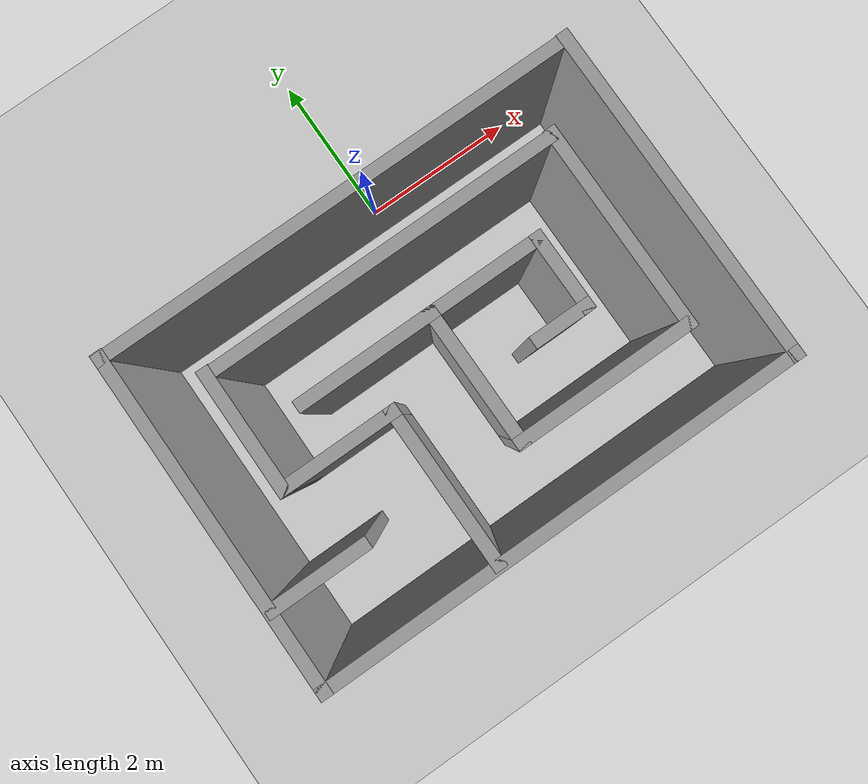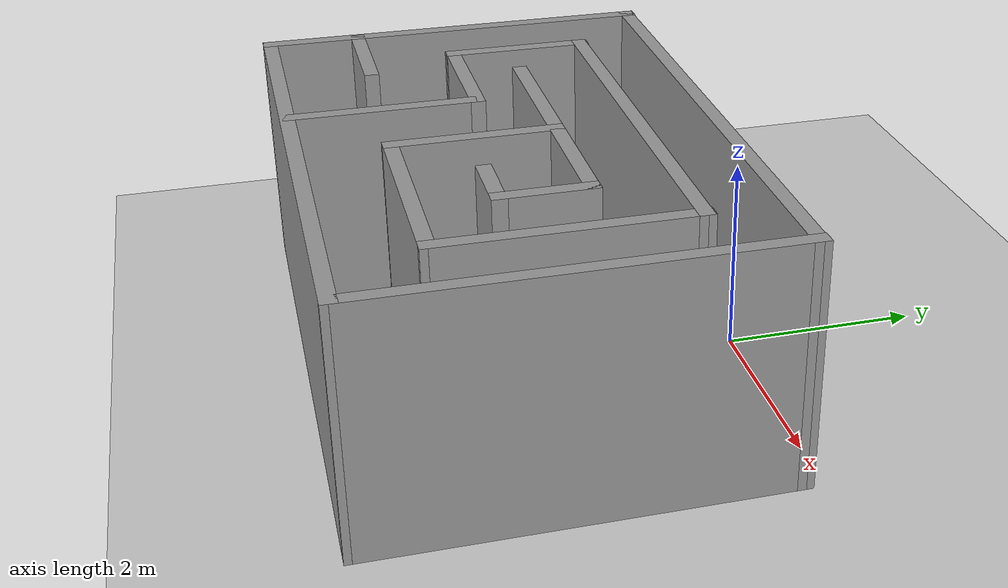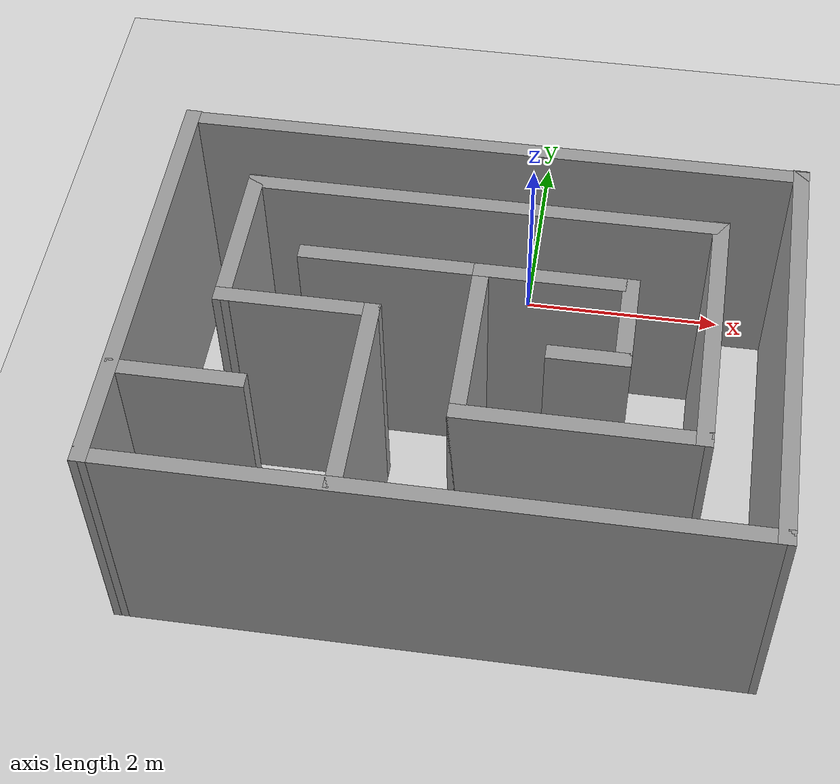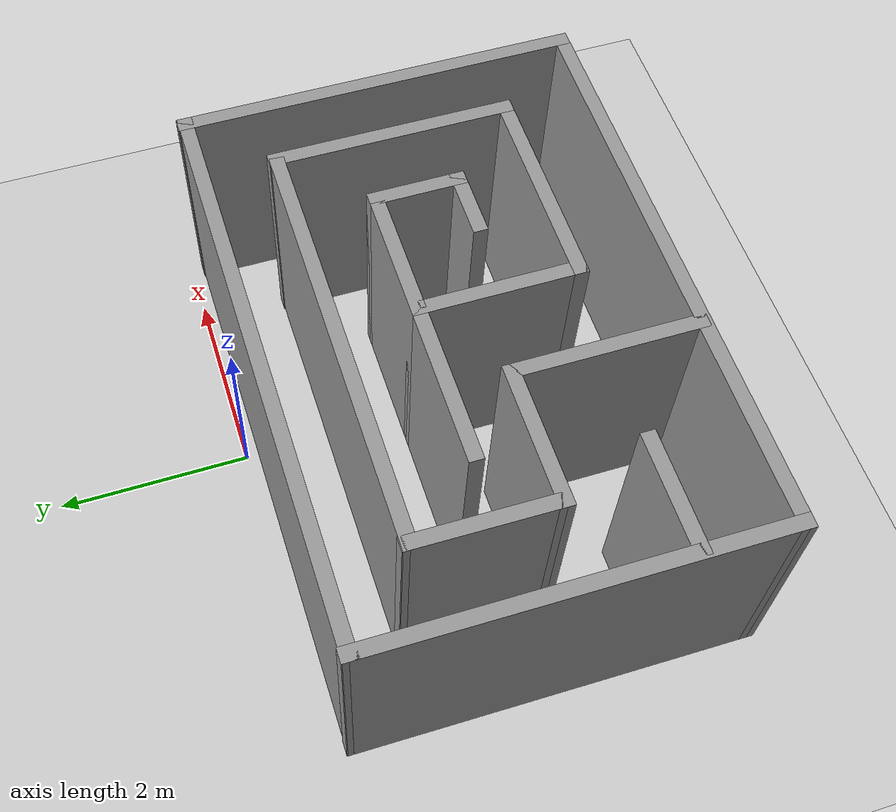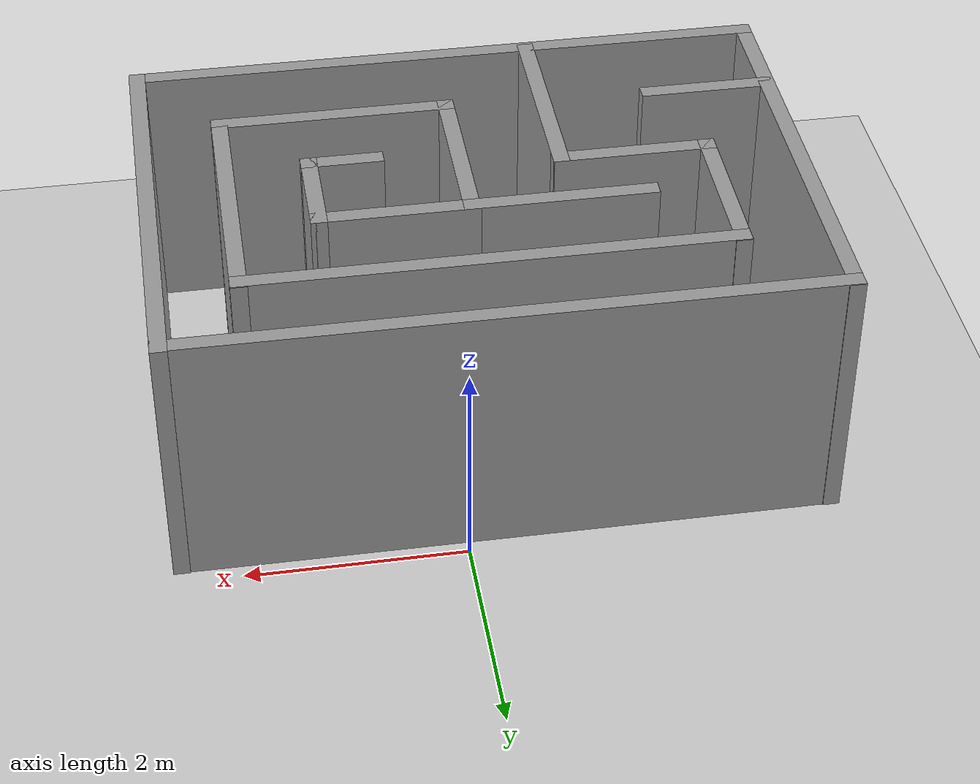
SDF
<sdf version="1.7">
 <world name="default">
  <light name="sun" type="directional">
   <pose>0 0 10 0 -0 0</pose>
   <diffuse>0.8 0.8 0.8 1</diffuse>
   <specular>0.2 0.2 0.2 1</specular>
   <attenuation>
    <range>1000</range>
    <constant>0.9</constant>
    <linear>0.01</linear>
    <quadratic>0.001</quadratic>
   </attenuation>
   <direction>-0.5 0.1 -0.9</direction>
   <spot><inner_angle>0</inner_angle><outer_angle>0</outer_angle><falloff>0</falloff></spot>
  </light>
  <model name="ground_plane">
   <static>1</static>
   <link name="link">
    <collision name="collision">
     <geometry><plane><normal>0 0 1</normal><size>100 100</size></plane></geometry>
     <surface>
      <contact><collide_bitmask>65535</collide_bitmask></contact>
      <friction><ode><mu>100</mu><mu2>50</mu2></ode></friction>
     </surface>
    </collision>
    <visual name="visual">
     <cast_shadows>0</cast_shadows>
     <geometry><plane><normal>0 0 1</normal><size>100 100</size></plane></geometry>
     <material>
      <script><uri>file://media/materials/scripts/gazebo.material</uri><name>Gazebo/Grey</name></script>
     </material>
    </visual>
   </link>
  </model>
  <gravity>0 0 -9.8</gravity>
  <magnetic_field>6e-06 2.3e-05 -4.2e-05</magnetic_field>
  <atmosphere type="adiabatic"/>
  <physics type="ode">
   <max_step_size>0.001</max_step_size>
   <real_time_factor>1</real_time_factor>
   <real_time_update_rate>1000</real_time_update_rate>
  </physics>
  <scene><ambient>0.4 0.4 0.4 1</ambient><background>0.7 0.7 0.7 1</background><shadows>1</shadows></scene>
  <spherical_coordinates>
   <surface_model>EARTH_WGS84</surface_model>
   <latitude_deg>0</latitude_deg>
   <longitude_deg>0</longitude_deg>
   <elevation>0</elevation>
   <heading_deg>0</heading_deg>
  </spherical_coordinates>
  <model name="hahjin_simple">
   <pose>-0.4 -2.15759 0 0 -0 0</pose>
   <link name="Wall_0">
    <collision name="Wall_0_Collision">
     <geometry><box><size>6 0.15 2.5</size></box></geometry>
     <pose>0 0 1.25 0 -0 0</pose>
    </collision>
    <visual name="Wall_0_Visual">
     <pose>0 0 1.25 0 -0 0</pose>
     <geometry><box><size>6 0.15 2.5</size></box></geometry>
     <material>
      <script><uri>file://media/materials/scripts/gazebo.material</uri><name>Gazebo/Grey</name></script>
      <ambient>1 1 1 1</ambient>
     </material>
     <meta><layer>0</layer></meta>
    </visual>
    <pose>-0.005 -2.08241 0 0 -0 0</pose>
   </link>
   <link name="Wall_1">
    <collision name="Wall_1_Collision">
     <geometry><box><size>4.20001 0.15 2.5</size></box></geometry>
     <pose>0 0 1.25 0 -0 0</pose>
    </collision>
    <visual name="Wall_1_Visual">
     <pose>0 0 1.25 0 -0 0</pose>
     <geometry><box><size>4.20001 0.15 2.5</size></box></geometry>
     <material>
      <script><uri>file://media/materials/scripts/gazebo.material</uri><name>Gazebo/Grey</name></script>
      <ambient>1 1 1 1</ambient>
     </material>
     <meta><layer>0</layer></meta>
    </visual>
    <pose>2.925 -0.057407 0 0 -0 1.56833</pose>
   </link>
   <link name="Wall_10">
    <collision name="Wall_10_Collision">
     <geometry><box><size>4.5 0.15 2.5</size></box></geometry>
     <pose>0 0 1.25 0 -0 0</pose>
    </collision>
    <visual name="Wall_10_Visual">
     <pose>0 0 1.25 0 -0 0</pose>
     <geometry><box><size>4.5 0.15 2.5</size></box></geometry>
     <material>
      <script><uri>file://media/materials/scripts/gazebo.material</uri><name>Gazebo/Grey</name></script>
      <ambient>1 1 1 1</ambient>
     </material>
     <meta><layer>0</layer></meta>
    </visual>
    <pose>0.045 1.19759 0 0 -0 0</pose>
   </link>
   <link name="Wall_11">
    <collision name="Wall_11_Collision">
     <geometry><box><size>2.56002 0.15 2.5</size></box></geometry>
     <pose>0 0 1.25 0 -0 0</pose>
    </collision>
    <visual name="Wall_11_Visual">
     <pose>0 0 1.25 0 -0 0</pose>
     <geometry><box><size>2.56002 0.15 2.5</size></box></geometry>
     <material>
      <script><uri>file://media/materials/scripts/gazebo.material</uri><name>Gazebo/Grey</name></script>
      <ambient>1 1 1 1</ambient>
     </material>
     <meta><layer>0</layer></meta>
    </visual>
    <pose>2.215 0.002593 0 0 -0 -1.57495</pose>
   </link>
   <link name="Wall_12">
    <collision name="Wall_12_Collision">
     <geometry><box><size>2.25 0.15 2.5</size></box></geometry>
     <pose>0 0 1.25 0 -0 0</pose>
    </collision>
    <visual name="Wall_12_Visual">
     <pose>0 0 1.25 0 -0 0</pose>
     <geometry><box><size>2.25 0.15 2.5</size></box></geometry>
     <material>
      <script><uri>file://media/materials/scripts/gazebo.material</uri><name>Gazebo/Grey</name></script>
      <ambient>1 1 1 1</ambient>
     </material>
     <meta><layer>0</layer></meta>
    </visual>
    <pose>1.16 -1.20241 0 0 -0 3.14159</pose>
   </link>
   <link name="Wall_14">
    <collision name="Wall_14_Collision">
     <geometry><box><size>1.75 0.15 2.5</size></box></geometry>
     <pose>0 0 1.25 0 -0 0</pose>
    </collision>
    <visual name="Wall_14_Visual">
     <pose>0 0 1.25 0 -0 0</pose>
     <geometry><box><size>1.75 0.15 2.5</size></box></geometry>
     <material>
      <script><uri>file://media/materials/scripts/gazebo.material</uri><name>Gazebo/Grey</name></script>
      <ambient>1 1 1 1</ambient>
     </material>
     <meta><layer>0</layer></meta>
    </visual>
    <pose>0.11 -0.402407 0 0 -0 1.5708</pose>
   </link>
   <link name="Wall_15">
    <collision name="Wall_15_Collision">
     <geometry><box><size>1.75 0.15 2.5</size></box></geometry>
     <pose>0 0 1.25 0 -0 0</pose>
    </collision>
    <visual name="Wall_15_Visual">
     <pose>0 0 1.25 0 -0 0</pose>
     <geometry><box><size>1.75 0.15 2.5</size></box></geometry>
     <material>
      <script><uri>file://media/materials/scripts/gazebo.material</uri><name>Gazebo/Grey</name></script>
      <ambient>1 1 1 1</ambient>
     </material>
     <meta><layer>0</layer></meta>
    </visual>
    <pose>-0.69 0.397593 0 0 -0 3.14159</pose>
   </link>
   <link name="Wall_17">
    <collision name="Wall_17_Collision">
     <geometry><box><size>1.5 0.15 2.5</size></box></geometry>
     <pose>0 0 1.25 0 -0 0</pose>
    </collision>
    <visual name="Wall_17_Visual">
     <pose>0 0 1.25 0 -0 0</pose>
     <geometry><box><size>1.5 0.15 2.5</size></box></geometry>
     <material>
      <script><uri>file://media/materials/scripts/gazebo.material</uri><name>Gazebo/Grey</name></script>
      <ambient>1 1 1 1</ambient>
     </material>
     <meta><layer>0</layer></meta>
    </visual>
    <pose>0.785 0.397593 0 0 -0 0</pose>
   </link>
   <link name="Wall_18">
    <collision name="Wall_18_Collision">
     <geometry><box><size>1 0.15 2.5</size></box></geometry>
     <pose>0 0 1.25 0 -0 0</pose>
    </collision>
    <visual name="Wall_18_Visual">
     <pose>0 0 1.25 0 -0 0</pose>
     <geometry><box><size>1 0.15 2.5</size></box></geometry>
     <material>
      <script><uri>file://media/materials/scripts/gazebo.material</uri><name>Gazebo/Grey</name></script>
      <ambient>1 1 1 1</ambient>
     </material>
     <meta><layer>0</layer></meta>
    </visual>
    <pose>1.46 -0.027407 0 0 -0 -1.5708</pose>
   </link>
   <link name="Wall_19">
    <collision name="Wall_19_Collision">
     <geometry><box><size>0.75 0.15 2.5</size></box></geometry>
     <pose>0 0 1.25 0 -0 0</pose>
    </collision>
    <visual name="Wall_19_Visual">
     <pose>0 0 1.25 0 -0 0</pose>
     <geometry><box><size>0.75 0.15 2.5</size></box></geometry>
     <material>
      <script><uri>file://media/materials/scripts/gazebo.material</uri><name>Gazebo/Grey</name></script>
      <ambient>1 1 1 1</ambient>
     </material>
     <meta><layer>0</layer></meta>
    </visual>
    <pose>1.16 -0.452407 0 0 -0 3.14159</pose>
   </link>
   <link name="Wall_2">
    <collision name="Wall_2_Collision">
     <geometry><box><size>6 0.15 2.5</size></box></geometry>
     <pose>0 0 1.25 0 -0 0</pose>
    </collision>
    <visual name="Wall_2_Visual">
     <pose>0 0 1.25 0 -0 0</pose>
     <geometry><box><size>6 0.15 2.5</size></box></geometry>
     <material>
      <script><uri>file://media/materials/scripts/gazebo.material</uri><name>Gazebo/Grey</name></script>
      <ambient>1 1 1 1</ambient>
     </material>
     <meta><layer>0</layer></meta>
    </visual>
    <pose>0.005 1.95759 0 0 -0 3.14159</pose>
   </link>
   <link name="Wall_3">
    <collision name="Wall_3_Collision">
     <geometry><box><size>4.20001 0.15 2.5</size></box></geometry>
     <pose>0 0 1.25 0 -0 0</pose>
    </collision>
    <visual name="Wall_3_Visual">
     <pose>0 0 1.25 0 -0 0</pose>
     <geometry><box><size>4.20001 0.15 2.5</size></box></geometry>
     <material>
      <script><uri>file://media/materials/scripts/gazebo.material</uri><name>Gazebo/Grey</name></script>
      <ambient>1 1 1 1</ambient>
     </material>
     <meta><layer>0</layer></meta>
    </visual>
    <pose>-2.925 -0.057407 0 0 -0 -1.57326</pose>
   </link>
   <link name="Wall_5">
    <collision name="Wall_5_Collision">
     <geometry><box><size>1.25 0.15 2.5</size></box></geometry>
     <pose>0 0 1.25 0 -0 0</pose>
    </collision>
    <visual name="Wall_5_Visual">
     <pose>0 0 1.25 0 -0 0</pose>
     <geometry><box><size>1.25 0.15 2.5</size></box></geometry>
     <material>
      <script><uri>file://media/materials/scripts/gazebo.material</uri><name>Gazebo/Grey</name></script>
      <ambient>1 1 1 1</ambient>
     </material>
     <meta><layer>0</layer></meta>
    </visual>
    <pose>-2.35 -1.13241 0 0 -0 0</pose>
   </link>
   <link name="Wall_7">
    <collision name="Wall_7_Collision">
     <geometry><box><size>2 0.15 2.5</size></box></geometry>
     <pose>0 0 1.25 0 -0 0</pose>
    </collision>
    <visual name="Wall_7_Visual">
     <pose>0 0 1.25 0 -0 0</pose>
     <geometry><box><size>2 0.15 2.5</size></box></geometry>
     <material>
      <script><uri>file://media/materials/scripts/gazebo.material</uri><name>Gazebo/Grey</name></script>
      <ambient>1 1 1 1</ambient>
     </material>
     <meta><layer>0</layer></meta>
    </visual>
    <pose>-0.79 -1.12741 0 0 -0 1.5708</pose>
   </link>
   <link name="Wall_8">
    <collision name="Wall_8_Collision">
     <geometry><box><size>1.5 0.15 2.5</size></box></geometry>
     <pose>0 0 1.25 0 -0 0</pose>
    </collision>
    <visual name="Wall_8_Visual">
     <pose>0 0 1.25 0 -0 0</pose>
     <geometry><box><size>1.5 0.15 2.5</size></box></geometry>
     <material>
      <script><uri>file://media/materials/scripts/gazebo.material</uri><name>Gazebo/Grey</name></script>
      <ambient>1 1 1 1</ambient>
     </material>
     <meta><layer>0</layer></meta>
    </visual>
    <pose>-1.465 -0.202407 0 0 -0 3.14159</pose>
   </link>
   <link name="Wall_9">
    <collision name="Wall_9_Collision">
     <geometry><box><size>1.56004 0.15 2.5</size></box></geometry>
     <pose>0 0 1.25 0 -0 0</pose>
    </collision>
    <visual name="Wall_9_Visual">
     <pose>0 0 1.25 0 -0 0</pose>
     <geometry><box><size>1.56004 0.15 2.5</size></box></geometry>
     <material>
      <script><uri>file://media/materials/scripts/gazebo.material</uri><name>Gazebo/Grey</name></script>
      <ambient>1 1 1 1</ambient>
     </material>
     <meta><layer>0</layer></meta>
    </visual>
    <pose>-2.135 0.502593 0 0 -0 1.5637</pose>
   </link>
   <static>1</static>
  </model>
 </world>
</sdf>
